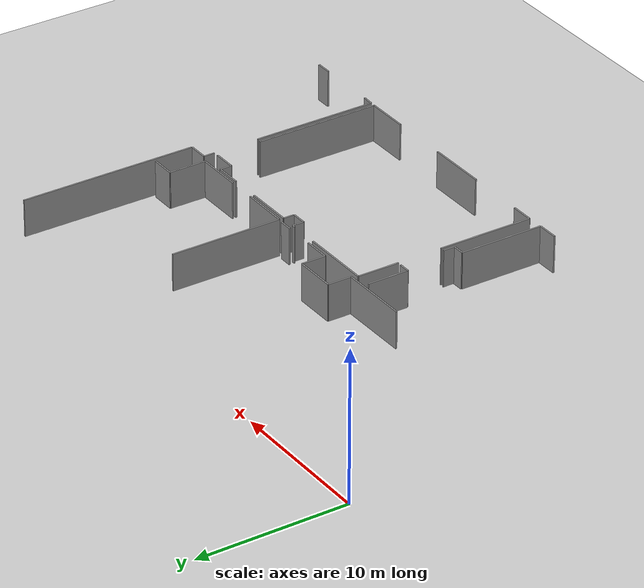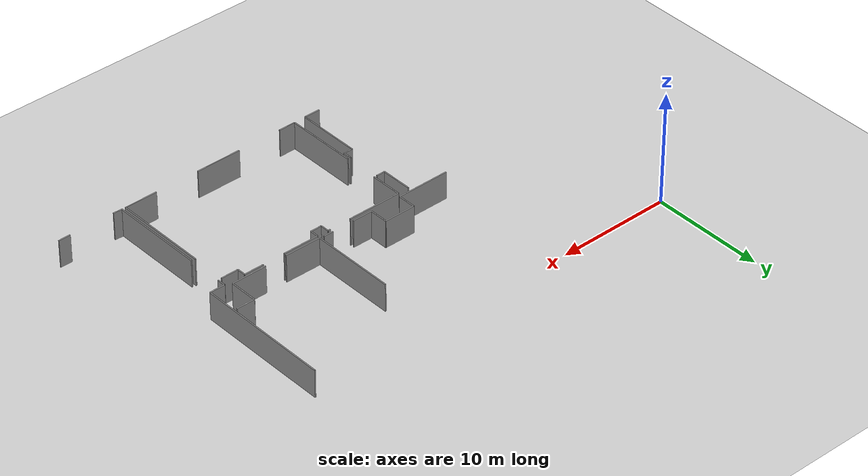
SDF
<sdf version="1.6">
 <world name="default">
  <model name="ground_plane">
   <static>1</static>
   <link name="link">
    <collision name="collision">
     <geometry><plane><normal>0 0 1</normal><size>100 100</size></plane></geometry>
     <surface><friction><ode><mu>100</mu><mu2>50</mu2></ode></friction></surface>
    </collision>
    <visual name="visual">
     <cast_shadows>0</cast_shadows>
     <geometry><plane><normal>0 0 1</normal><size>100 100</size></plane></geometry>
     <material>
      <script><uri>file://media/materials/scripts/gazebo.material</uri><name>Gazebo/Grey</name></script>
     </material>
    </visual>
   </link>
  </model>
  <model name="50057022">
   <static>1</static>
   <link name="Wall_451">
    <collision name="Wall_451_Collision">
     <geometry><box><size>2.76039409217 0.1 2.5</size></box></geometry>
     <pose>1.38019704608 0 1.25 0 0 0</pose>
    </collision>
    <visual name="Wall_451_Visual">
     <pose>1.38019704608 0 1.25 0 0 0</pose>
     <geometry><box><size>2.76039409217 0.1 2.5</size></box></geometry>
     <material>
      <script><uri>file://media/materials/scripts/gazebo.material</uri><name>Gazebo/Grey</name></script>
      <ambient>1 1 1 1</ambient>
     </material>
    </visual>
    <pose>71.9698525069 -35.4208964152 0 0 0 -1.57079632679</pose>
   </link>
   <link name="Wall_452">
    <collision name="Wall_452_Collision">
     <geometry><box><size>0.754320997042 0.1 2.5</size></box></geometry>
     <pose>0.377160498521 0 1.25 0 0 0</pose>
    </collision>
    <visual name="Wall_452_Visual">
     <pose>0.377160498521 0 1.25 0 0 0</pose>
     <geometry><box><size>0.754320997042 0.1 2.5</size></box></geometry>
     <material>
      <script><uri>file://media/materials/scripts/gazebo.material</uri><name>Gazebo/Grey</name></script>
      <ambient>1 1 1 1</ambient>
     </material>
    </visual>
    <pose>71.9698525069 -38.1812905074 0 0 0 0.0</pose>
   </link>
   <link name="Wall_453">
    <collision name="Wall_453_Collision">
     <geometry><box><size>0.782329219546 0.1 2.5</size></box></geometry>
     <pose>0.391164609773 0 1.25 0 0 0</pose>
    </collision>
    <visual name="Wall_453_Visual">
     <pose>0.391164609773 0 1.25 0 0 0</pose>
     <geometry><box><size>0.782329219546 0.1 2.5</size></box></geometry>
     <material>
      <script><uri>file://media/materials/scripts/gazebo.material</uri><name>Gazebo/Grey</name></script>
      <ambient>1 1 1 1</ambient>
     </material>
    </visual>
    <pose>72.724173504 -41.2154301227 0 0 0 -1.57079632679</pose>
   </link>
   <link name="Wall_454">
    <collision name="Wall_454_Collision">
     <geometry><box><size>0.795889761664 0.1 2.5</size></box></geometry>
     <pose>0.397944880832 0 1.25 0 0 0</pose>
    </collision>
    <visual name="Wall_454_Visual">
     <pose>0.397944880832 0 1.25 0 0 0</pose>
     <geometry><box><size>0.795889761664 0.1 2.5</size></box></geometry>
     <material>
      <script><uri>file://media/materials/scripts/gazebo.material</uri><name>Gazebo/Grey</name></script>
      <ambient>1 1 1 1</ambient>
     </material>
    </visual>
    <pose>72.724173504 -41.9977593422 0 0 0 3.14159265359</pose>
   </link>
   <link name="Wall_455">
    <collision name="Wall_455_Collision">
     <geometry><box><size>5.62103480877 0.1 2.5</size></box></geometry>
     <pose>2.81051740439 0 1.25 0 0 0</pose>
    </collision>
    <visual name="Wall_455_Visual">
     <pose>2.81051740439 0 1.25 0 0 0</pose>
     <geometry><box><size>5.62103480877 0.1 2.5</size></box></geometry>
     <material>
      <script><uri>file://media/materials/scripts/gazebo.material</uri><name>Gazebo/Grey</name></script>
      <ambient>1 1 1 1</ambient>
     </material>
    </visual>
    <pose>71.9282837423 -41.9977593422 0 0 0 -1.57079632679</pose>
   </link>
   <link name="Wall_456">
    <collision name="Wall_456_Collision">
     <geometry><box><size>1.44058581542 0.1 2.5</size></box></geometry>
     <pose>0.72029290771 0 1.25 0 0 0</pose>
    </collision>
    <visual name="Wall_456_Visual">
     <pose>0.72029290771 0 1.25 0 0 0</pose>
     <geometry><box><size>1.44058581542 0.1 2.5</size></box></geometry>
     <material>
      <script><uri>file://media/materials/scripts/gazebo.material</uri><name>Gazebo/Grey</name></script>
      <ambient>1 1 1 1</ambient>
     </material>
    </visual>
    <pose>71.9282837423 -47.618794151 0 0 0 3.14159265359</pose>
   </link>
   <link name="Wall_458">
    <collision name="Wall_458_Collision">
     <geometry><box><size>6.35875364677 0.1 2.5</size></box></geometry>
     <pose>3.17937682339 0 1.25 0 0 0</pose>
    </collision>
    <visual name="Wall_458_Visual">
     <pose>3.17937682339 0 1.25 0 0 0</pose>
     <geometry><box><size>6.35875364677 0.1 2.5</size></box></geometry>
     <material>
      <script><uri>file://media/materials/scripts/gazebo.material</uri><name>Gazebo/Grey</name></script>
      <ambient>1 1 1 1</ambient>
     </material>
    </visual>
    <pose>72.9972853569 -47.5850828967 0 0 0 1.57079632679</pose>
   </link>
   <link name="Wall_459">
    <collision name="Wall_459_Collision">
     <geometry><box><size>2.82122643064 0.1 2.5</size></box></geometry>
     <pose>1.41061321532 0 1.25 0 0 0</pose>
    </collision>
    <visual name="Wall_459_Visual">
     <pose>1.41061321532 0 1.25 0 0 0</pose>
     <geometry><box><size>2.82122643064 0.1 2.5</size></box></geometry>
     <material>
      <script><uri>file://media/materials/scripts/gazebo.material</uri><name>Gazebo/Grey</name></script>
      <ambient>1 1 1 1</ambient>
     </material>
    </visual>
    <pose>72.9972853569 -38.2177899104 0 0 0 1.57079632679</pose>
   </link>
   <link name="Wall_460">
    <collision name="Wall_460_Collision">
     <geometry><box><size>4.78281587825 0.1 2.5</size></box></geometry>
     <pose>2.39140793913 0 1.25 0 0 0</pose>
    </collision>
    <visual name="Wall_460_Visual">
     <pose>2.39140793913 0 1.25 0 0 0</pose>
     <geometry><box><size>4.78281587825 0.1 2.5</size></box></geometry>
     <material>
      <script><uri>file://media/materials/scripts/gazebo.material</uri><name>Gazebo/Grey</name></script>
      <ambient>1 1 1 1</ambient>
     </material>
    </visual>
    <pose>72.9972853569 -35.3965634798 0 0 0 0.0</pose>
   </link>
   <link name="Wall_461">
    <collision name="Wall_461_Collision">
     <geometry><box><size>0.218616216381 0.1 2.5</size></box></geometry>
     <pose>0.10930810819 0 1.25 0 0 0</pose>
    </collision>
    <visual name="Wall_461_Visual">
     <pose>0.10930810819 0 1.25 0 0 0</pose>
     <geometry><box><size>0.218616216381 0.1 2.5</size></box></geometry>
     <material>
      <script><uri>file://media/materials/scripts/gazebo.material</uri><name>Gazebo/Grey</name></script>
      <ambient>1 1 1 1</ambient>
     </material>
    </visual>
    <pose>79.7366213212 -35.3965634798 0 0 0 0.0</pose>
   </link>
   <link name="Wall_462">
    <collision name="Wall_462_Collision">
     <geometry><box><size>0.762558709543 0.1 2.5</size></box></geometry>
     <pose>0.381279354772 0 1.25 0 0 0</pose>
    </collision>
    <visual name="Wall_462_Visual">
     <pose>0.381279354772 0 1.25 0 0 0</pose>
     <geometry><box><size>0.762558709543 0.1 2.5</size></box></geometry>
     <material>
      <script><uri>file://media/materials/scripts/gazebo.material</uri><name>Gazebo/Grey</name></script>
      <ambient>1 1 1 1</ambient>
     </material>
    </visual>
    <pose>79.9552375376 -35.3965634798 0 0 0 -1.57079632679</pose>
   </link>
   <link name="Wall_463">
    <collision name="Wall_463_Collision">
     <geometry><box><size>1.00563459535 0.1 2.5</size></box></geometry>
     <pose>0.502817297675 0 1.25 0 0 0</pose>
    </collision>
    <visual name="Wall_463_Visual">
     <pose>0.502817297675 0 1.25 0 0 0</pose>
     <geometry><box><size>1.00563459535 0.1 2.5</size></box></geometry>
     <material>
      <script><uri>file://media/materials/scripts/gazebo.material</uri><name>Gazebo/Grey</name></script>
      <ambient>1 1 1 1</ambient>
     </material>
    </visual>
    <pose>79.9552375376 -36.1591221894 0 0 0 0.0</pose>
   </link>
   <link name="Wall_464">
    <collision name="Wall_464_Collision">
     <geometry><box><size>0.75786955012 0.1 2.5</size></box></geometry>
     <pose>0.37893477506 0 1.25 0 0 0</pose>
    </collision>
    <visual name="Wall_464_Visual">
     <pose>0.37893477506 0 1.25 0 0 0</pose>
     <geometry><box><size>0.75786955012 0.1 2.5</size></box></geometry>
     <material>
      <script><uri>file://media/materials/scripts/gazebo.material</uri><name>Gazebo/Grey</name></script>
      <ambient>1 1 1 1</ambient>
     </material>
    </visual>
    <pose>80.960872133 -36.1591221894 0 0 0 1.57079632679</pose>
   </link>
   <link name="Wall_465">
    <collision name="Wall_465_Collision">
     <geometry><box><size>3.22753575801 0.1 2.5</size></box></geometry>
     <pose>1.613767879 0 1.25 0 0 0</pose>
    </collision>
    <visual name="Wall_465_Visual">
     <pose>1.613767879 0 1.25 0 0 0</pose>
     <geometry><box><size>3.22753575801 0.1 2.5</size></box></geometry>
     <material>
      <script><uri>file://media/materials/scripts/gazebo.material</uri><name>Gazebo/Grey</name></script>
      <ambient>1 1 1 1</ambient>
     </material>
    </visual>
    <pose>80.960872133 -35.4012526392 0 0 0 0.0</pose>
   </link>
   <link name="Wall_466">
    <collision name="Wall_466_Collision">
     <geometry><box><size>1.77427653874 0.1 2.5</size></box></geometry>
     <pose>0.887138269371 0 1.25 0 0 0</pose>
    </collision>
    <visual name="Wall_466_Visual">
     <pose>0.887138269371 0 1.25 0 0 0</pose>
     <geometry><box><size>1.77427653874 0.1 2.5</size></box></geometry>
     <material>
      <script><uri>file://media/materials/scripts/gazebo.material</uri><name>Gazebo/Grey</name></script>
      <ambient>1 1 1 1</ambient>
     </material>
    </visual>
    <pose>86.1633044126 -35.4012526392 0 0 0 0.0</pose>
   </link>
   <link name="Wall_467">
    <collision name="Wall_467_Collision">
     <geometry><box><size>0.775612315507 0.1 2.5</size></box></geometry>
     <pose>0.387806157753 0 1.25 0 0 0</pose>
    </collision>
    <visual name="Wall_467_Visual">
     <pose>0.387806157753 0 1.25 0 0 0</pose>
     <geometry><box><size>0.775612315507 0.1 2.5</size></box></geometry>
     <material>
      <script><uri>file://media/materials/scripts/gazebo.material</uri><name>Gazebo/Grey</name></script>
      <ambient>1 1 1 1</ambient>
     </material>
    </visual>
    <pose>87.9375809514 -35.4012526392 0 0 0 -1.57079632679</pose>
   </link>
   <link name="Wall_468">
    <collision name="Wall_468_Collision">
     <geometry><box><size>1.54615526947 0.1 2.5</size></box></geometry>
     <pose>0.773077634737 0 1.25 0 0 0</pose>
    </collision>
    <visual name="Wall_468_Visual">
     <pose>0.773077634737 0 1.25 0 0 0</pose>
     <geometry><box><size>1.54615526947 0.1 2.5</size></box></geometry>
     <material>
      <script><uri>file://media/materials/scripts/gazebo.material</uri><name>Gazebo/Grey</name></script>
      <ambient>1 1 1 1</ambient>
     </material>
    </visual>
    <pose>87.9375809514 -36.1768649547 0 0 0 0.0</pose>
   </link>
   <link name="Wall_469">
    <collision name="Wall_469_Collision">
     <geometry><box><size>8.36343266747 0.1 2.5</size></box></geometry>
     <pose>4.18171633374 0 1.25 0 0 0</pose>
    </collision>
    <visual name="Wall_469_Visual">
     <pose>4.18171633374 0 1.25 0 0 0</pose>
     <geometry><box><size>8.36343266747 0.1 2.5</size></box></geometry>
     <material>
      <script><uri>file://media/materials/scripts/gazebo.material</uri><name>Gazebo/Grey</name></script>
      <ambient>1 1 1 1</ambient>
     </material>
    </visual>
    <pose>89.4837362208 -39.2205096229 0 0 0 -1.57079632679</pose>
   </link>
   <link name="Wall_470">
    <collision name="Wall_470_Collision">
     <geometry><box><size>2.91538982123 0.1 2.5</size></box></geometry>
     <pose>1.45769491061 0 1.25 0 0 0</pose>
    </collision>
    <visual name="Wall_470_Visual">
     <pose>1.45769491061 0 1.25 0 0 0</pose>
     <geometry><box><size>2.91538982123 0.1 2.5</size></box></geometry>
     <material>
      <script><uri>file://media/materials/scripts/gazebo.material</uri><name>Gazebo/Grey</name></script>
      <ambient>1 1 1 1</ambient>
     </material>
    </visual>
    <pose>89.4837362208 -47.5839422904 0 0 0 3.14159265359</pose>
   </link>
   <link name="Wall_471">
    <collision name="Wall_471_Collision">
     <geometry><box><size>4.0561229016 0.1 2.5</size></box></geometry>
     <pose>2.0280614508 0 1.25 0 0 0</pose>
    </collision>
    <visual name="Wall_471_Visual">
     <pose>2.0280614508 0 1.25 0 0 0</pose>
     <geometry><box><size>4.0561229016 0.1 2.5</size></box></geometry>
     <material>
      <script><uri>file://media/materials/scripts/gazebo.material</uri><name>Gazebo/Grey</name></script>
      <ambient>1 1 1 1</ambient>
     </material>
    </visual>
    <pose>82.5793925384 -47.5839422904 0 0 0 3.14159265359</pose>
   </link>
   <link name="Wall_472">
    <collision name="Wall_472_Collision">
     <geometry><box><size>1.52017521949 0.1 2.5</size></box></geometry>
     <pose>0.760087609746 0 1.25 0 0 0</pose>
    </collision>
    <visual name="Wall_472_Visual">
     <pose>0.760087609746 0 1.25 0 0 0</pose>
     <geometry><box><size>1.52017521949 0.1 2.5</size></box></geometry>
     <material>
      <script><uri>file://media/materials/scripts/gazebo.material</uri><name>Gazebo/Grey</name></script>
      <ambient>1 1 1 1</ambient>
     </material>
    </visual>
    <pose>74.5174601485 -47.5839422904 0 0 0 -3.1408423411</pose>
   </link>
   <link name="Wall_511">
    <collision name="Wall_511_Collision">
     <geometry><box><size>0.861918195713 0.1 2.5</size></box></geometry>
     <pose>0.430959097856 0 1.25 0 0 0</pose>
    </collision>
    <visual name="Wall_511_Visual">
     <pose>0.430959097856 0 1.25 0 0 0</pose>
     <geometry><box><size>0.861918195713 0.1 2.5</size></box></geometry>
     <material>
      <script><uri>file://media/materials/scripts/gazebo.material</uri><name>Gazebo/Grey</name></script>
      <ambient>1 1 1 1</ambient>
     </material>
    </visual>
    <pose>80.6256606012 -35.0638866288 0 0 0 3.14159265359</pose>
   </link>
   <link name="Wall_512">
    <collision name="Wall_512_Collision">
     <geometry><box><size>1.80253822932 0.1 2.5</size></box></geometry>
     <pose>0.901269114661 0 1.25 0 0 0</pose>
    </collision>
    <visual name="Wall_512_Visual">
     <pose>0.901269114661 0 1.25 0 0 0</pose>
     <geometry><box><size>1.80253822932 0.1 2.5</size></box></geometry>
     <material>
      <script><uri>file://media/materials/scripts/gazebo.material</uri><name>Gazebo/Grey</name></script>
      <ambient>1 1 1 1</ambient>
     </material>
    </visual>
    <pose>77.7690753738 -35.0638866288 0 0 0 3.14159265359</pose>
   </link>
   <link name="Wall_513">
    <collision name="Wall_513_Collision">
     <geometry><box><size>1.62409670314 0.1 2.5</size></box></geometry>
     <pose>0.81204835157 0 1.25 0 0 0</pose>
    </collision>
    <visual name="Wall_513_Visual">
     <pose>0.81204835157 0 1.25 0 0 0</pose>
     <geometry><box><size>1.62409670314 0.1 2.5</size></box></geometry>
     <material>
      <script><uri>file://media/materials/scripts/gazebo.material</uri><name>Gazebo/Grey</name></script>
      <ambient>1 1 1 1</ambient>
     </material>
    </visual>
    <pose>75.9665371445 -35.0638866288 0 0 0 1.57079632679</pose>
   </link>
   <link name="Wall_514">
    <collision name="Wall_514_Collision">
     <geometry><box><size>2.77902399582 0.1 2.5</size></box></geometry>
     <pose>1.38951199791 0 1.25 0 0 0</pose>
    </collision>
    <visual name="Wall_514_Visual">
     <pose>1.38951199791 0 1.25 0 0 0</pose>
     <geometry><box><size>2.77902399582 0.1 2.5</size></box></geometry>
     <material>
      <script><uri>file://media/materials/scripts/gazebo.material</uri><name>Gazebo/Grey</name></script>
      <ambient>1 1 1 1</ambient>
     </material>
    </visual>
    <pose>75.9665371445 -33.4397899257 0 0 0 3.14159265359</pose>
   </link>
   <link name="Wall_515">
    <collision name="Wall_515_Collision">
     <geometry><box><size>1.59076565102 0.1 2.5</size></box></geometry>
     <pose>0.79538282551 0 1.25 0 0 0</pose>
    </collision>
    <visual name="Wall_515_Visual">
     <pose>0.79538282551 0 1.25 0 0 0</pose>
     <geometry><box><size>1.59076565102 0.1 2.5</size></box></geometry>
     <material>
      <script><uri>file://media/materials/scripts/gazebo.material</uri><name>Gazebo/Grey</name></script>
      <ambient>1 1 1 1</ambient>
     </material>
    </visual>
    <pose>73.1875131487 -33.4397899257 0 0 0 -1.57079632679</pose>
   </link>
   <link name="Wall_516">
    <collision name="Wall_516_Collision">
     <geometry><box><size>4.68781198916 0.1 2.5</size></box></geometry>
     <pose>2.34390599458 0 1.25 0 0 0</pose>
    </collision>
    <visual name="Wall_516_Visual">
     <pose>2.34390599458 0 1.25 0 0 0</pose>
     <geometry><box><size>4.68781198916 0.1 2.5</size></box></geometry>
     <material>
      <script><uri>file://media/materials/scripts/gazebo.material</uri><name>Gazebo/Grey</name></script>
      <ambient>1 1 1 1</ambient>
     </material>
    </visual>
    <pose>73.1875131487 -35.0305555767 0 0 0 -3.13713189754</pose>
   </link>
   <link name="Wall_524">
    <collision name="Wall_524_Collision">
     <geometry><box><size>7.44752577137 0.1 2.5</size></box></geometry>
     <pose>3.72376288568 0 1.25 0 0 0</pose>
    </collision>
    <visual name="Wall_524_Visual">
     <pose>3.72376288568 0 1.25 0 0 0</pose>
     <geometry><box><size>7.44752577137 0.1 2.5</size></box></geometry>
     <material>
      <script><uri>file://media/materials/scripts/gazebo.material</uri><name>Gazebo/Grey</name></script>
      <ambient>1 1 1 1</ambient>
     </material>
    </visual>
    <pose>80.9900209618 -35.1243387652 0 0 0 1.57079632679</pose>
   </link>
   <link name="Wall_527">
    <collision name="Wall_527_Collision">
     <geometry><box><size>1.61776000122 0.1 2.5</size></box></geometry>
     <pose>0.808880000608 0 1.25 0 0 0</pose>
    </collision>
    <visual name="Wall_527_Visual">
     <pose>0.808880000608 0 1.25 0 0 0</pose>
     <geometry><box><size>1.61776000122 0.1 2.5</size></box></geometry>
     <material>
      <script><uri>file://media/materials/scripts/gazebo.material</uri><name>Gazebo/Grey</name></script>
      <ambient>1 1 1 1</ambient>
     </material>
    </visual>
    <pose>90.8860483566 -32.6612627273 0 0 0 3.14159265359</pose>
   </link>
   <link name="Wall_528">
    <collision name="Wall_528_Collision">
     <geometry><box><size>2.49222486674 0.1 2.5</size></box></geometry>
     <pose>1.24611243337 0 1.25 0 0 0</pose>
    </collision>
    <visual name="Wall_528_Visual">
     <pose>1.24611243337 0 1.25 0 0 0</pose>
     <geometry><box><size>2.49222486674 0.1 2.5</size></box></geometry>
     <material>
      <script><uri>file://media/materials/scripts/gazebo.material</uri><name>Gazebo/Grey</name></script>
      <ambient>1 1 1 1</ambient>
     </material>
    </visual>
    <pose>89.2682883554 -32.6612627273 0 0 0 -1.57079632679</pose>
   </link>
   <link name="Wall_529">
    <collision name="Wall_529_Collision">
     <geometry><box><size>3.11892468703 0.1 2.5</size></box></geometry>
     <pose>1.55946234352 0 1.25 0 0 0</pose>
    </collision>
    <visual name="Wall_529_Visual">
     <pose>1.55946234352 0 1.25 0 0 0</pose>
     <geometry><box><size>3.11892468703 0.1 2.5</size></box></geometry>
     <material>
      <script><uri>file://media/materials/scripts/gazebo.material</uri><name>Gazebo/Grey</name></script>
      <ambient>1 1 1 1</ambient>
     </material>
    </visual>
    <pose>89.2682883554 -35.153487594 0 0 0 3.14159265359</pose>
   </link>
   <link name="Wall_530">
    <collision name="Wall_530_Collision">
     <geometry><box><size>3.23197616299 0.1 2.5</size></box></geometry>
     <pose>1.6159880815 0 1.25 0 0 0</pose>
    </collision>
    <visual name="Wall_530_Visual">
     <pose>1.6159880815 0 1.25 0 0 0</pose>
     <geometry><box><size>3.23197616299 0.1 2.5</size></box></geometry>
     <material>
      <script><uri>file://media/materials/scripts/gazebo.material</uri><name>Gazebo/Grey</name></script>
      <ambient>1 1 1 1</ambient>
     </material>
    </visual>
    <pose>84.2218656771 -35.153487594 0 0 0 3.13257364399</pose>
   </link>
   <link name="Wall_543">
    <collision name="Wall_543_Collision">
     <geometry><box><size>8.32591939208 0.1 2.5</size></box></geometry>
     <pose>4.16295969604 0 1.25 0 0 0</pose>
    </collision>
    <visual name="Wall_543_Visual">
     <pose>4.16295969604 0 1.25 0 0 0</pose>
     <geometry><box><size>8.32591939208 0.1 2.5</size></box></geometry>
     <material>
      <script><uri>file://media/materials/scripts/gazebo.material</uri><name>Gazebo/Grey</name></script>
      <ambient>1 1 1 1</ambient>
     </material>
    </visual>
    <pose>89.8164130719 -47.5966156942 0 0 0 1.57079632679</pose>
   </link>
   <link name="Wall_544">
    <collision name="Wall_544_Collision">
     <geometry><box><size>0.732902944539 0.1 2.5</size></box></geometry>
     <pose>0.366451472269 0 1.25 0 0 0</pose>
    </collision>
    <visual name="Wall_544_Visual">
     <pose>0.366451472269 0 1.25 0 0 0</pose>
     <geometry><box><size>0.732902944539 0.1 2.5</size></box></geometry>
     <material>
      <script><uri>file://media/materials/scripts/gazebo.material</uri><name>Gazebo/Grey</name></script>
      <ambient>1 1 1 1</ambient>
     </material>
    </visual>
    <pose>89.8164130719 -36.151518147 0 0 0 1.57079632679</pose>
   </link>
   <link name="Wall_545">
    <collision name="Wall_545_Collision">
     <geometry><box><size>1.35339279694 0.1 2.5</size></box></geometry>
     <pose>0.676696398472 0 1.25 0 0 0</pose>
    </collision>
    <visual name="Wall_545_Visual">
     <pose>0.676696398472 0 1.25 0 0 0</pose>
     <geometry><box><size>1.35339279694 0.1 2.5</size></box></geometry>
     <material>
      <script><uri>file://media/materials/scripts/gazebo.material</uri><name>Gazebo/Grey</name></script>
      <ambient>1 1 1 1</ambient>
     </material>
    </visual>
    <pose>89.8164130719 -35.4186152025 0 0 0 0.0</pose>
   </link>
   <link name="Wall_546">
    <collision name="Wall_546_Collision">
     <geometry><box><size>11.826440269 0.1 2.5</size></box></geometry>
     <pose>5.91322013449 0 1.25 0 0 0</pose>
    </collision>
    <visual name="Wall_546_Visual">
     <pose>5.91322013449 0 1.25 0 0 0</pose>
     <geometry><box><size>11.826440269 0.1 2.5</size></box></geometry>
     <material>
      <script><uri>file://media/materials/scripts/gazebo.material</uri><name>Gazebo/Grey</name></script>
      <ambient>1 1 1 1</ambient>
     </material>
    </visual>
    <pose>91.1698058688 -35.4186152025 0 0 0 1.57079632679</pose>
   </link>
   <link name="Wall_563">
    <collision name="Wall_563_Collision">
     <geometry><box><size>1.05582127459 0.1 2.5</size></box></geometry>
     <pose>0.527910637295 0 1.25 0 0 0</pose>
    </collision>
    <visual name="Wall_563_Visual">
     <pose>0.527910637295 0 1.25 0 0 0</pose>
     <geometry><box><size>1.05582127459 0.1 2.5</size></box></geometry>
     <material>
      <script><uri>file://media/materials/scripts/gazebo.material</uri><name>Gazebo/Grey</name></script>
      <ambient>1 1 1 1</ambient>
     </material>
    </visual>
    <pose>95.7028289572 -47.6342557037 0 0 0 3.14159265359</pose>
   </link>
   <link name="Wall_564">
    <collision name="Wall_564_Collision">
     <geometry><box><size>0.792095425624 0.1 2.5</size></box></geometry>
     <pose>0.396047712812 0 1.25 0 0 0</pose>
    </collision>
    <visual name="Wall_564_Visual">
     <pose>0.396047712812 0 1.25 0 0 0</pose>
     <geometry><box><size>0.792095425624 0.1 2.5</size></box></geometry>
     <material>
      <script><uri>file://media/materials/scripts/gazebo.material</uri><name>Gazebo/Grey</name></script>
      <ambient>1 1 1 1</ambient>
     </material>
    </visual>
    <pose>90.6076136741 -47.6342557037 0 0 0 3.09405521241</pose>
   </link>
   <pose>-56.55 23.8342557037 0 0 0 0</pose>
  </model>
 </world>
</sdf>
